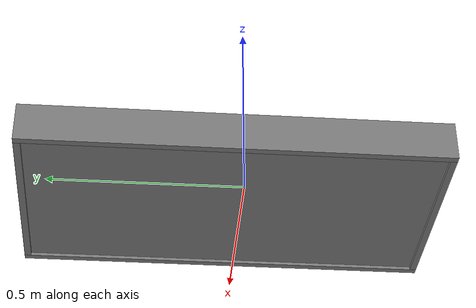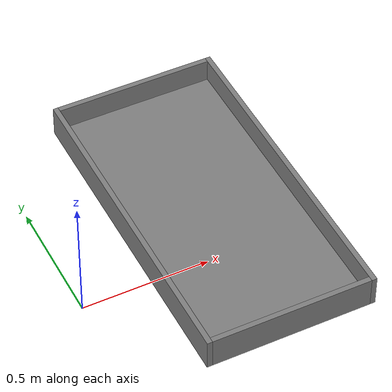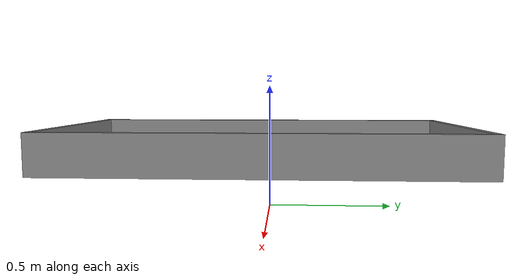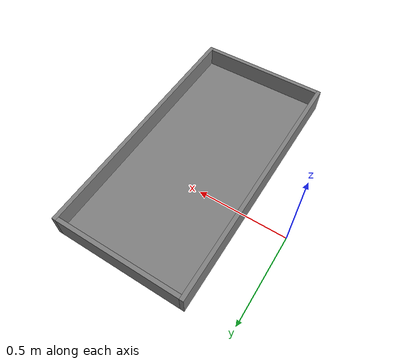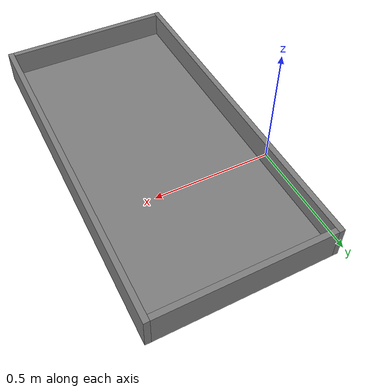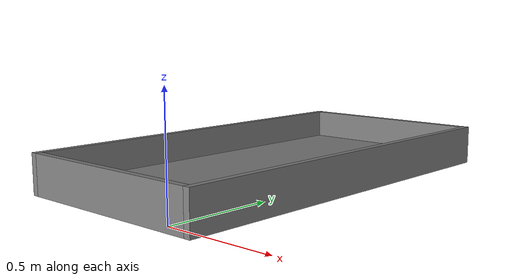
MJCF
<mujoco model="tray">
  <worldbody>
         <body name="tray_body" pos="0.5 0 0.25" quat="0 0 0 0">
             <geom mass="2000" pos="0 0 0.02" size="0.3 0.6 0.01" type="box" />
             <geom pos="0 0.61 0.06" size="0.3 0.01 0.06" type="box" />
             <geom pos="0 -0.61 0.06" size="0.3 0.01 0.06" type="box" />
             <geom pos="0.31 0 0.06" size="0.01 0.62 0.06" type="box" />
             <geom pos="-0.31 0 0.06" size="0.01 0.62 0.06" type="box" />
         </body>
  </worldbody>
</mujoco>
